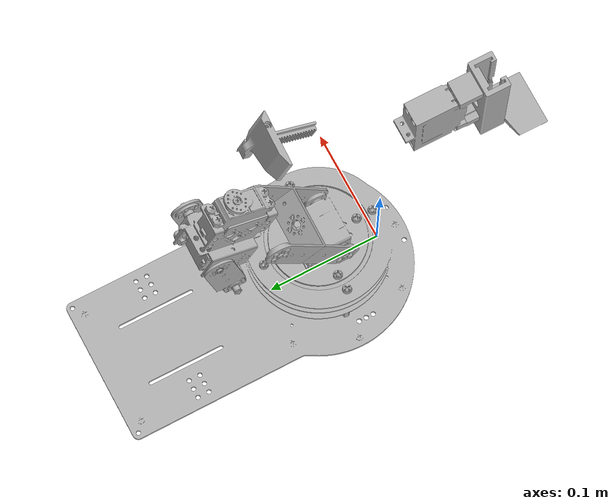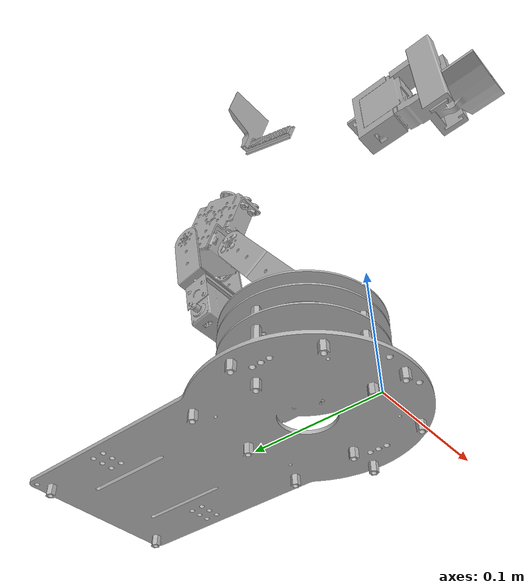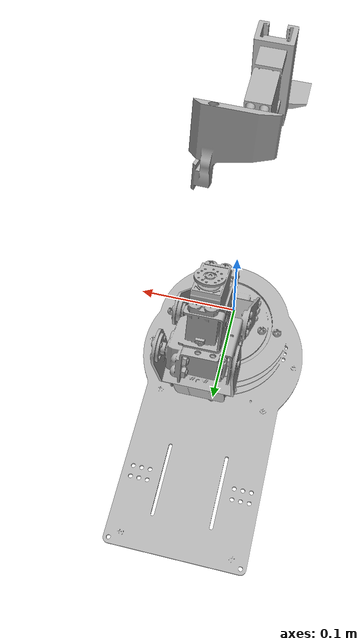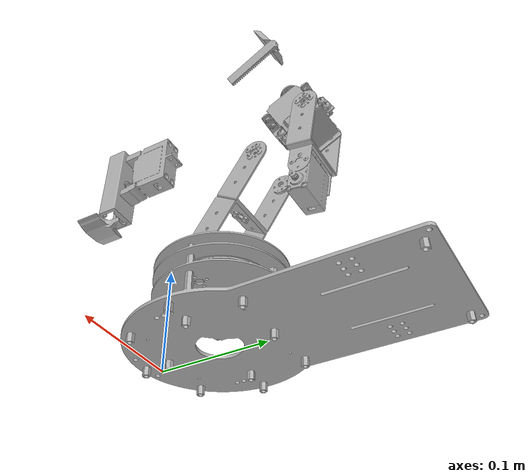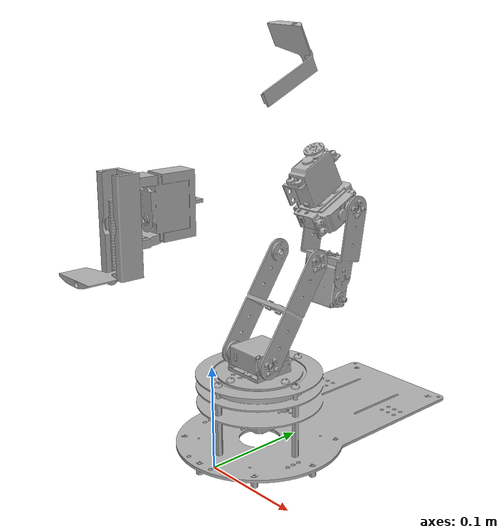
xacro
<?xml version="1.0" ?>
<robot name="Hiwonder" xmlns:xacro="http://www.ros.org/wiki/xacro">

<xacro:include filename="$(find Hiwonder_description)/urdf/materials.xacro" />
<xacro:include filename="$(find Hiwonder_description)/urdf/Hiwonder.trans" />
<xacro:include filename="$(find Hiwonder_description)/urdf/Hiwonder.gazebo" />
<link name="base_link">
  <inertial>
    <origin xyz="1.0914827906389602e-06 0.09260862084125268 0.03056402721165038" rpy="0 0 0"/>
    <mass value="1.5251096871562557"/>
    <inertia ixx="0.008261" iyy="0.002907" izz="0.009107" ixy="0.0" iyz="0.001105" ixz="-0.0"/>
  </inertial>
  <visual>
    <origin xyz="0 0 0" rpy="0 0 0"/>
    <geometry>
      <mesh filename="package://Hiwonder_description/meshes/base_link.stl" scale="0.001 0.001 0.001"/>
    </geometry>
    <material name="silver"/>
  </visual>
  <collision>
    <origin xyz="0 0 0" rpy="0 0 0"/>
    <geometry>
      <mesh filename="package://Hiwonder_description/meshes/base_link.stl" scale="0.001 0.001 0.001"/>
    </geometry>
  </collision>
</link>

<link name="second_link_1">
  <inertial>
    <origin xyz="0.0015155642244600231 1.7928644227699353e-06 0.024809430057861744" rpy="0 0 0"/>
    <mass value="0.37909012139587217"/>
    <inertia ixx="0.000161" iyy="0.00016" izz="0.000201" ixy="0.0" iyz="0.0" ixz="-6e-06"/>
  </inertial>
  <visual>
    <origin xyz="0.0 -0.056304 -0.060801" rpy="0 0 0"/>
    <geometry>
      <mesh filename="package://Hiwonder_description/meshes/second_link_1.stl" scale="0.001 0.001 0.001"/>
    </geometry>
    <material name="silver"/>
  </visual>
  <collision>
    <origin xyz="0.0 -0.056304 -0.060801" rpy="0 0 0"/>
    <geometry>
      <mesh filename="package://Hiwonder_description/meshes/second_link_1.stl" scale="0.001 0.001 0.001"/>
    </geometry>
  </collision>
</link>

<link name="third_link_1">
  <inertial>
    <origin xyz="-0.027698296621942956 0.04765413999012262 0.020748432672287473" rpy="0 0 0"/>
    <mass value="0.16226233466168985"/>
    <inertia ixx="0.000203" iyy="0.000132" izz="0.00026" ixy="-0.0" iyz="-6.9e-05" ixz="-0.0"/>
  </inertial>
  <visual>
    <origin xyz="-0.028042 -0.046304 -0.095801" rpy="0 0 0"/>
    <geometry>
      <mesh filename="package://Hiwonder_description/meshes/third_link_1.stl" scale="0.001 0.001 0.001"/>
    </geometry>
    <material name="silver"/>
  </visual>
  <collision>
    <origin xyz="-0.028042 -0.046304 -0.095801" rpy="0 0 0"/>
    <geometry>
      <mesh filename="package://Hiwonder_description/meshes/third_link_1.stl" scale="0.001 0.001 0.001"/>
    </geometry>
  </collision>
</link>

<link name="fourth_link_1">
  <inertial>
    <origin xyz="-0.02572686990818987 0.004053928250455058 0.023157892432834615" rpy="0 0 0"/>
    <mass value="0.2923899366437736"/>
    <inertia ixx="0.000208" iyy="0.00026" izz="8.7e-05" ixy="-0.0" iyz="-3.2e-05" ixz="-2e-06"/>
  </inertial>
  <visual>
    <origin xyz="-0.028042 -0.141658 -0.137318" rpy="0 0 0"/>
    <geometry>
      <mesh filename="package://Hiwonder_description/meshes/fourth_link_1.stl" scale="0.001 0.001 0.001"/>
    </geometry>
    <material name="silver"/>
  </visual>
  <collision>
    <origin xyz="-0.028042 -0.141658 -0.137318" rpy="0 0 0"/>
    <geometry>
      <mesh filename="package://Hiwonder_description/meshes/fourth_link_1.stl" scale="0.001 0.001 0.001"/>
    </geometry>
  </collision>
</link>

<link name="fifth_link_1">
  <inertial>
    <origin xyz="0.02482151135065362 -0.01754474473381723 0.013754851957438224" rpy="0 0 0"/>
    <mass value="0.29380221652800204"/>
    <inertia ixx="0.000201" iyy="0.000157" izz="0.000113" ixy="-4e-06" iyz="2.4e-05" ixz="5e-06"/>
  </inertial>
  <visual>
    <origin xyz="0.0285 -0.157021 -0.224566" rpy="0 0 0"/>
    <geometry>
      <mesh filename="package://Hiwonder_description/meshes/fifth_link_1.stl" scale="0.001 0.001 0.001"/>
    </geometry>
    <material name="silver"/>
  </visual>
  <collision>
    <origin xyz="0.0285 -0.157021 -0.224566" rpy="0 0 0"/>
    <geometry>
      <mesh filename="package://Hiwonder_description/meshes/fifth_link_1.stl" scale="0.001 0.001 0.001"/>
    </geometry>
  </collision>
</link>

<link name="sixth_link_1">
  <inertial>
    <origin xyz="-5.564917727016649e-05 -0.024329962527568846 0.039653341169548384" rpy="0 0 0"/>
    <mass value="0.5747761409814244"/>
    <inertia ixx="0.000539" iyy="0.000285" izz="0.000328" ixy="-9e-06" iyz="5.9e-05" ixz="-2e-06"/>
  </inertial>
  <visual>
    <origin xyz="0.003224 -0.127901 -0.28191" rpy="0 0 0"/>
    <geometry>
      <mesh filename="package://Hiwonder_description/meshes/sixth_link_1.stl" scale="0.001 0.001 0.001"/>
    </geometry>
    <material name="silver"/>
  </visual>
  <collision>
    <origin xyz="0.003224 -0.127901 -0.28191" rpy="0 0 0"/>
    <geometry>
      <mesh filename="package://Hiwonder_description/meshes/sixth_link_1.stl" scale="0.001 0.001 0.001"/>
    </geometry>
  </collision>
</link>

<link name="right_finger_1">
  <inertial>
    <origin xyz="0.3334698569050242 -0.00907267411723324 -0.01453310351807563" rpy="0 0 0"/>
    <mass value="0.07962832262347441"/>
    <inertia ixx="4.1e-05" iyy="3.8e-05" izz="2.4e-05" ixy="3e-06" iyz="-1.2e-05" ixz="1e-05"/>
  </inertial>
  <visual>
    <origin xyz="0.336601 -0.108453 -0.384364" rpy="0 0 0"/>
    <geometry>
      <mesh filename="package://Hiwonder_description/meshes/right_finger_1.stl" scale="0.001 0.001 0.001"/>
    </geometry>
    <material name="silver"/>
  </visual>
  <collision>
    <origin xyz="0.336601 -0.108453 -0.384364" rpy="0 0 0"/>
    <geometry>
      <mesh filename="package://Hiwonder_description/meshes/right_finger_1.stl" scale="0.001 0.001 0.001"/>
    </geometry>
  </collision>
</link>

<link name="left_finger_1">
  <inertial>
    <origin xyz="0.0021544872810023447 -0.02302381129656561 0.005335867881885781" rpy="0 0 0"/>
    <mass value="0.07506411850762539"/>
    <inertia ixx="3.9e-05" iyy="1.2e-05" izz="3.7e-05" ixy="-1e-06" iyz="3e-06" ixz="0.0"/>
  </inertial>
  <visual>
    <origin xyz="0.014763 -0.085594 -0.345323" rpy="0 0 0"/>
    <geometry>
      <mesh filename="package://Hiwonder_description/meshes/left_finger_1.stl" scale="0.001 0.001 0.001"/>
    </geometry>
    <material name="silver"/>
  </visual>
  <collision>
    <origin xyz="0.014763 -0.085594 -0.345323" rpy="0 0 0"/>
    <geometry>
      <mesh filename="package://Hiwonder_description/meshes/left_finger_1.stl" scale="0.001 0.001 0.001"/>
    </geometry>
  </collision>
</link>

<joint name="Revolute 13" type="revolute">
  <origin xyz="0.0 0.056304 0.060801" rpy="0 0 0"/>
  <parent link="base_link"/>
  <child link="second_link_1"/>
  <axis xyz="0.0 0.0 -1.0"/>
  <limit upper="1.570796" lower="-1.570796" effort="100" velocity="100"/>
</joint>

<joint name="Revolute 14" type="revolute">
  <origin xyz="0.028042 -0.01 0.035" rpy="0 0 0"/>
  <parent link="second_link_1"/>
  <child link="third_link_1"/>
  <axis xyz="-1.0 -0.0 -0.0"/>
  <limit upper="0.785398" lower="-2.094395" effort="100" velocity="100"/>
</joint>

<joint name="Revolute 15" type="revolute">
  <origin xyz="0.0 0.095354 0.041517" rpy="0 0 0"/>
  <parent link="third_link_1"/>
  <child link="fourth_link_1"/>
  <axis xyz="-1.0 -0.0 -0.0"/>
  <limit upper="2.879793" lower="-0.261799" effort="100" velocity="100"/>
</joint>

<joint name="Revolute 16" type="revolute">
  <origin xyz="-0.056542 0.015363 0.087248" rpy="0 0 0"/>
  <parent link="fourth_link_1"/>
  <child link="fifth_link_1"/>
  <axis xyz="1.0 0.0 0.0"/>
  <limit upper="0.698132" lower="-2.443461" effort="100" velocity="100"/>
</joint>

<joint name="Revolute 19" type="revolute">
  <origin xyz="0.025276 -0.02912 0.057344" rpy="0 0 0"/>
  <parent link="fifth_link_1"/>
  <child link="sixth_link_1"/>
  <axis xyz="-0.004192 0.443437 -0.896296"/>
  <limit upper="3.141593" lower="0.0" effort="100" velocity="100"/>
</joint>

<joint name="Slider 29" type="prismatic">
  <origin xyz="-0.333377 -0.019448 0.102454" rpy="0 0 0"/>
  <parent link="sixth_link_1"/>
  <child link="right_finger_1"/>
  <axis xyz="0.045686 0.895452 0.442806"/>
  <limit upper="0.01" lower="-0.01" effort="100" velocity="100"/>
</joint>

<joint name="Slider 31" type="prismatic">
  <origin xyz="-0.011539 -0.042307 0.063413" rpy="0 0 0"/>
  <parent link="sixth_link_1"/>
  <child link="left_finger_1"/>
  <axis xyz="0.045686 0.895452 0.442806"/>
  <limit upper="0.01" lower="-0.01" effort="100" velocity="100"/>
</joint>

</robot>

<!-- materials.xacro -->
<robot name="Hiwonder" xmlns:xacro="http://www.ros.org/wiki/xacro" >

<material name="silver">
  <color rgba="0.700 0.700 0.700 1.000"/>
</material>

</robot>

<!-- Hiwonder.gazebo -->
<robot name="Hiwonder" xmlns:xacro="http://www.ros.org/wiki/xacro" >

<xacro:property name="body_color" value="Gazebo/Silver" />

<gazebo>
  <plugin name="control" filename="libgazebo_ros_control.so"/>
</gazebo>
<gazebo reference="base_link">
  <material>${body_color}</material>
  <mu1>0.2</mu1>
  <mu2>0.2</mu2>
  <selfCollide>true</selfCollide>
  <gravity>true</gravity>
</gazebo>

<gazebo reference="second_link_1">
  <material>${body_color}</material>
  <mu1>0.2</mu1>
  <mu2>0.2</mu2>
  <selfCollide>true</selfCollide>
</gazebo>

<gazebo reference="third_link_1">
  <material>${body_color}</material>
  <mu1>0.2</mu1>
  <mu2>0.2</mu2>
  <selfCollide>true</selfCollide>
</gazebo>

<gazebo reference="fourth_link_1">
  <material>${body_color}</material>
  <mu1>0.2</mu1>
  <mu2>0.2</mu2>
  <selfCollide>true</selfCollide>
</gazebo>

<gazebo reference="fifth_link_1">
  <material>${body_color}</material>
  <mu1>0.2</mu1>
  <mu2>0.2</mu2>
  <selfCollide>true</selfCollide>
</gazebo>

<gazebo reference="sixth_link_1">
  <material>${body_color}</material>
  <mu1>0.2</mu1>
  <mu2>0.2</mu2>
  <selfCollide>true</selfCollide>
</gazebo>

<gazebo reference="left_finger_1">
  <material>${body_color}</material>
  <mu1>0.2</mu1>
  <mu2>0.2</mu2>
  <selfCollide>true</selfCollide>
</gazebo>

<gazebo reference="right_finger_1">
  <material>${body_color}</material>
  <mu1>0.2</mu1>
  <mu2>0.2</mu2>
  <selfCollide>true</selfCollide>
</gazebo>

<gazebo reference="gear_link_1">
  <material>${body_color}</material>
  <mu1>0.2</mu1>
  <mu2>0.2</mu2>
  <selfCollide>true</selfCollide>
</gazebo>

</robot>
